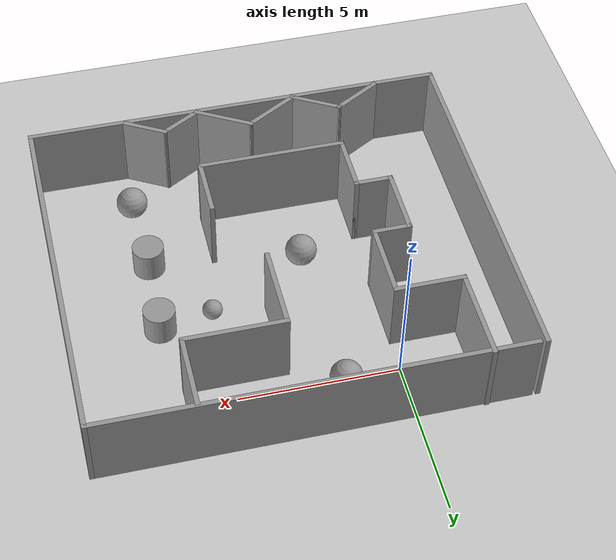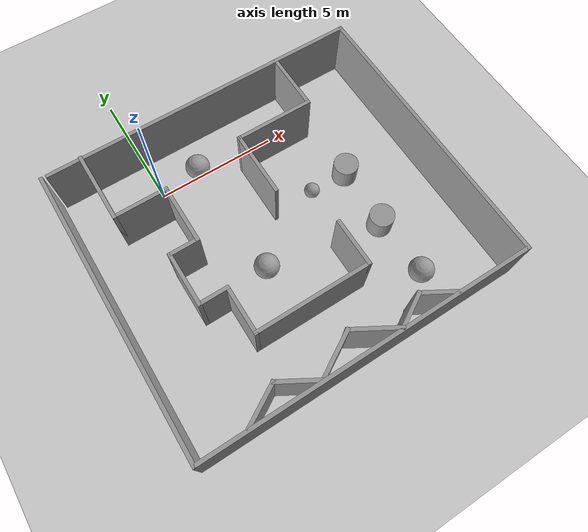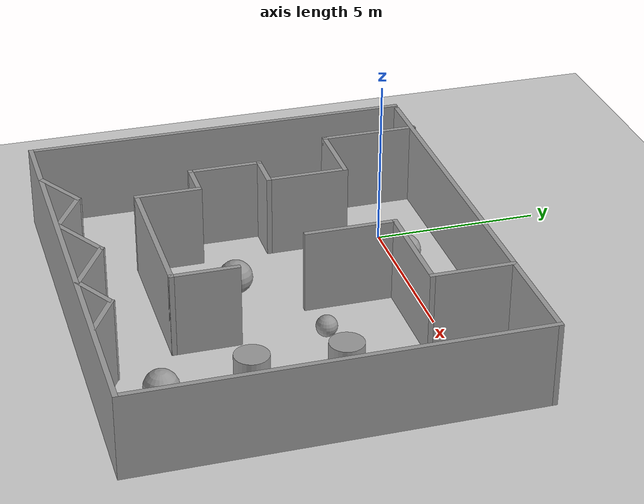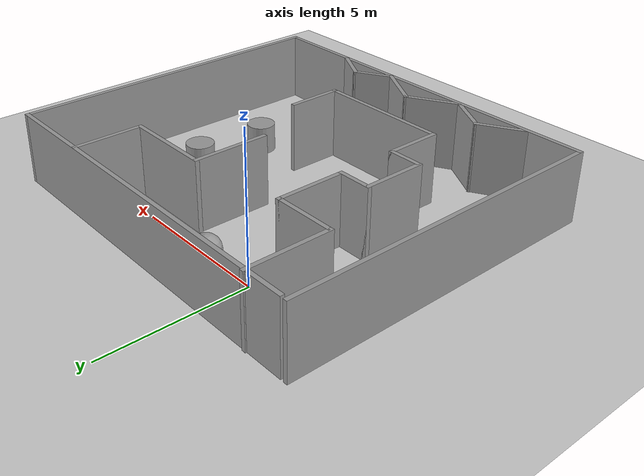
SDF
<sdf version="1.7">
 <world name="default">
  <light name="sun" type="directional">
   <pose>0 0 10 0 -0 0</pose>
   <diffuse>0.8 0.8 0.8 1</diffuse>
   <specular>0.2 0.2 0.2 1</specular>
   <attenuation>
    <range>1000</range>
    <constant>0.9</constant>
    <linear>0.01</linear>
    <quadratic>0.001</quadratic>
   </attenuation>
   <direction>-0.5 0.1 -0.9</direction>
   <spot><inner_angle>0</inner_angle><outer_angle>0</outer_angle><falloff>0</falloff></spot>
  </light>
  <model name="ground_plane">
   <static>1</static>
   <link name="link">
    <collision name="collision">
     <geometry><plane><normal>0 0 1</normal><size>100 100</size></plane></geometry>
     <surface><friction><ode><mu>100</mu><mu2>50</mu2></ode></friction></surface>
    </collision>
    <visual name="visual">
     <cast_shadows>0</cast_shadows>
     <geometry><plane><normal>0 0 1</normal><size>100 100</size></plane></geometry>
     <material>
      <script><uri>file://media/materials/scripts/gazebo.material</uri><name>Gazebo/Grey</name></script>
     </material>
    </visual>
   </link>
  </model>
  <gravity>0 0 -9.8</gravity>
  <magnetic_field>6e-06 2.3e-05 -4.2e-05</magnetic_field>
  <atmosphere type="adiabatic"/>
  <physics type="ode">
   <max_step_size>0.001</max_step_size>
   <real_time_factor>1</real_time_factor>
   <real_time_update_rate>1000</real_time_update_rate>
  </physics>
  <scene><ambient>0.4 0.4 0.4 1</ambient><background>0.7 0.7 0.7 1</background><shadows>1</shadows></scene>
  <spherical_coordinates>
   <surface_model>EARTH_WGS84</surface_model>
   <latitude_deg>0</latitude_deg>
   <longitude_deg>0</longitude_deg>
   <elevation>0</elevation>
   <heading_deg>0</heading_deg>
  </spherical_coordinates>
  <model name="walls">
   <pose>2.94182 -4.0688 0 0 -0 0</pose>
   <link name="Wall_11">
    <collision name="Wall_11_Collision">
     <geometry><box><size>3 0.15 2.5</size></box></geometry>
     <pose>0 0 1.25 0 -0 0</pose>
    </collision>
    <visual name="Wall_11_Visual">
     <pose>0 0 1.25 0 -0 0</pose>
     <geometry><box><size>3 0.15 2.5</size></box></geometry>
     <material>
      <script><uri>file://media/materials/scripts/gazebo.material</uri><name>Gazebo/Grey</name></script>
      <ambient>1 1 1 1</ambient>
     </material>
     <meta><layer>0</layer></meta>
    </visual>
    <pose>-5.07342 4.39742 0 0 -0 -1.5708</pose>
   </link>
   <link name="Wall_12">
    <collision name="Wall_12_Collision">
     <geometry><box><size>2.25 0.15 2.5</size></box></geometry>
     <pose>0 0 1.25 0 -0 0</pose>
    </collision>
    <visual name="Wall_12_Visual">
     <pose>0 0 1.25 0 -0 0</pose>
     <geometry><box><size>2.25 0.15 2.5</size></box></geometry>
     <material>
      <script><uri>file://media/materials/scripts/gazebo.material</uri><name>Gazebo/Grey</name></script>
      <ambient>1 1 1 1</ambient>
     </material>
     <meta><layer>0</layer></meta>
    </visual>
    <pose>-4.02342 2.97242 0 0 -0 0</pose>
   </link>
   <link name="Wall_13">
    <collision name="Wall_13_Collision">
     <geometry><box><size>2.5 0.15 2.5</size></box></geometry>
     <pose>0 0 1.25 0 -0 0</pose>
    </collision>
    <visual name="Wall_13_Visual">
     <pose>0 0 1.25 0 -0 0</pose>
     <geometry><box><size>2.5 0.15 2.5</size></box></geometry>
     <material>
      <script><uri>file://media/materials/scripts/gazebo.material</uri><name>Gazebo/Grey</name></script>
      <ambient>1 1 1 1</ambient>
     </material>
     <meta><layer>0</layer></meta>
    </visual>
    <pose>-2.97342 1.79742 0 0 -0 -1.5708</pose>
   </link>
   <link name="Wall_14">
    <collision name="Wall_14_Collision">
     <geometry><box><size>1.25 0.15 2.5</size></box></geometry>
     <pose>0 0 1.25 0 -0 0</pose>
    </collision>
    <visual name="Wall_14_Visual">
     <pose>0 0 1.25 0 -0 0</pose>
     <geometry><box><size>1.25 0.15 2.5</size></box></geometry>
     <material>
      <script><uri>file://media/materials/scripts/gazebo.material</uri><name>Gazebo/Grey</name></script>
      <ambient>1 1 1 1</ambient>
     </material>
     <meta><layer>0</layer></meta>
    </visual>
    <pose>-3.52342 0.622418 0 0 -0 3.14159</pose>
   </link>
   <link name="Wall_15">
    <collision name="Wall_15_Collision">
     <geometry><box><size>2.25 0.15 2.5</size></box></geometry>
     <pose>0 0 1.25 0 -0 0</pose>
    </collision>
    <visual name="Wall_15_Visual">
     <pose>0 0 1.25 0 -0 0</pose>
     <geometry><box><size>2.25 0.15 2.5</size></box></geometry>
     <material>
      <script><uri>file://media/materials/scripts/gazebo.material</uri><name>Gazebo/Grey</name></script>
      <ambient>1 1 1 1</ambient>
     </material>
     <meta><layer>0</layer></meta>
    </visual>
    <pose>-4.07342 -0.427582 0 0 -0 -1.5708</pose>
   </link>
   <link name="Wall_16">
    <collision name="Wall_16_Collision">
     <geometry><box><size>1.25 0.15 2.5</size></box></geometry>
     <pose>0 0 1.25 0 -0 0</pose>
    </collision>
    <visual name="Wall_16_Visual">
     <pose>0 0 1.25 0 -0 0</pose>
     <geometry><box><size>1.25 0.15 2.5</size></box></geometry>
     <material>
      <script><uri>file://media/materials/scripts/gazebo.material</uri><name>Gazebo/Grey</name></script>
      <ambient>1 1 1 1</ambient>
     </material>
     <meta><layer>0</layer></meta>
    </visual>
    <pose>-3.52342 -1.47758 0 0 -0 0</pose>
   </link>
   <link name="Wall_17">
    <collision name="Wall_17_Collision">
     <geometry><box><size>2 0.15 2.5</size></box></geometry>
     <pose>0 0 1.25 0 -0 0</pose>
    </collision>
    <visual name="Wall_17_Visual">
     <pose>0 0 1.25 0 -0 0</pose>
     <geometry><box><size>2 0.15 2.5</size></box></geometry>
     <material>
      <script><uri>file://media/materials/scripts/gazebo.material</uri><name>Gazebo/Grey</name></script>
      <ambient>1 1 1 1</ambient>
     </material>
     <meta><layer>0</layer></meta>
    </visual>
    <pose>-2.97342 -2.40258 0 0 -0 -1.5708</pose>
   </link>
   <link name="Wall_18">
    <collision name="Wall_18_Collision">
     <geometry><box><size>4.75 0.15 2.5</size></box></geometry>
     <pose>0 0 1.25 0 -0 0</pose>
    </collision>
    <visual name="Wall_18_Visual">
     <pose>0 0 1.25 0 -0 0</pose>
     <geometry><box><size>4.75 0.15 2.5</size></box></geometry>
     <material>
      <script><uri>file://media/materials/scripts/gazebo.material</uri><name>Gazebo/Grey</name></script>
      <ambient>1 1 1 1</ambient>
     </material>
     <meta><layer>0</layer></meta>
    </visual>
    <pose>-0.673416 -3.32758 0 0 -0 0</pose>
   </link>
   <link name="Wall_19">
    <collision name="Wall_19_Collision">
     <geometry><box><size>2 0.15 2.5</size></box></geometry>
     <pose>0 0 1.25 0 -0 0</pose>
    </collision>
    <visual name="Wall_19_Visual">
     <pose>0 0 1.25 0 -0 0</pose>
     <geometry><box><size>2 0.15 2.5</size></box></geometry>
     <material>
      <script><uri>file://media/materials/scripts/gazebo.material</uri><name>Gazebo/Grey</name></script>
      <ambient>1 1 1 1</ambient>
     </material>
     <meta><layer>0</layer></meta>
    </visual>
    <pose>1.62658 -2.40258 0 0 -0 1.5708</pose>
   </link>
   <link name="Wall_23">
    <collision name="Wall_23_Collision">
     <geometry><box><size>2.5 0.15 2.5</size></box></geometry>
     <pose>0 0 1.25 0 -0 0</pose>
    </collision>
    <visual name="Wall_23_Visual">
     <pose>0 0 1.25 0 -0 0</pose>
     <geometry><box><size>2.5 0.15 2.5</size></box></geometry>
     <material>
      <script><uri>file://media/materials/scripts/gazebo.material</uri><name>Gazebo/Grey</name></script>
      <ambient>1 1 1 1</ambient>
     </material>
     <meta><layer>0</layer></meta>
    </visual>
    <pose>3.50717 4.58824 0 0 -0 -1.5708</pose>
   </link>
   <link name="Wall_24">
    <collision name="Wall_24_Collision">
     <geometry><box><size>3.25 0.15 2.5</size></box></geometry>
     <pose>0 0 1.25 0 -0 0</pose>
    </collision>
    <visual name="Wall_24_Visual">
     <pose>0 0 1.25 0 -0 0</pose>
     <geometry><box><size>3.25 0.15 2.5</size></box></geometry>
     <material>
      <script><uri>file://media/materials/scripts/gazebo.material</uri><name>Gazebo/Grey</name></script>
      <ambient>1 1 1 1</ambient>
     </material>
     <meta><layer>0</layer></meta>
    </visual>
    <pose>1.95717 3.41324 0 0 -0 3.14159</pose>
   </link>
   <link name="Wall_25">
    <collision name="Wall_25_Collision">
     <geometry><box><size>2.75 0.15 2.5</size></box></geometry>
     <pose>0 0 1.25 0 -0 0</pose>
    </collision>
    <visual name="Wall_25_Visual">
     <pose>0 0 1.25 0 -0 0</pose>
     <geometry><box><size>2.75 0.15 2.5</size></box></geometry>
     <material>
      <script><uri>file://media/materials/scripts/gazebo.material</uri><name>Gazebo/Grey</name></script>
      <ambient>1 1 1 1</ambient>
     </material>
     <meta><layer>0</layer></meta>
    </visual>
    <pose>0.40717 2.11324 0 0 -0 -1.5708</pose>
   </link>
   <link name="Wall_29">
    <collision name="Wall_29_Collision">
     <geometry><box><size>1.75 0.15 2.5</size></box></geometry>
     <pose>0 0 1.25 0 -0 0</pose>
    </collision>
    <visual name="Wall_29_Visual">
     <pose>0 0 1.25 0 -0 0</pose>
     <geometry><box><size>1.75 0.15 2.5</size></box></geometry>
     <material>
      <script><uri>file://media/materials/scripts/gazebo.material</uri><name>Gazebo/Grey</name></script>
      <ambient>1 1 1 1</ambient>
     </material>
     <meta><layer>0</layer></meta>
    </visual>
    <pose>-4.02554 -5.37617 0 0 -0 0.523599</pose>
   </link>
   <link name="Wall_30">
    <collision name="Wall_30_Collision">
     <geometry><box><size>1.75 0.15 2.5</size></box></geometry>
     <pose>0 0 1.25 0 -0 0</pose>
    </collision>
    <visual name="Wall_30_Visual">
     <pose>0 0 1.25 0 -0 0</pose>
     <geometry><box><size>1.75 0.15 2.5</size></box></geometry>
     <material>
      <script><uri>file://media/materials/scripts/gazebo.material</uri><name>Gazebo/Grey</name></script>
      <ambient>1 1 1 1</ambient>
     </material>
     <meta><layer>0</layer></meta>
    </visual>
    <pose>-2.6399 -5.37617 0 0 -0 -0.523599</pose>
   </link>
   <link name="Wall_31">
    <collision name="Wall_31_Collision">
     <geometry><box><size>2 0.15 2.5</size></box></geometry>
     <pose>0 0 1.25 0 -0 0</pose>
    </collision>
    <visual name="Wall_31_Visual">
     <pose>0 0 1.25 0 -0 0</pose>
     <geometry><box><size>2 0.15 2.5</size></box></geometry>
     <material>
      <script><uri>file://media/materials/scripts/gazebo.material</uri><name>Gazebo/Grey</name></script>
      <ambient>1 1 1 1</ambient>
     </material>
     <meta><layer>0</layer></meta>
    </visual>
    <pose>-1.146 -5.31367 0 0 -0 0.523599</pose>
   </link>
   <link name="Wall_32">
    <collision name="Wall_32_Collision">
     <geometry><box><size>2 0.15 2.5</size></box></geometry>
     <pose>0 0 1.25 0 -0 0</pose>
    </collision>
    <visual name="Wall_32_Visual">
     <pose>0 0 1.25 0 -0 0</pose>
     <geometry><box><size>2 0.15 2.5</size></box></geometry>
     <material>
      <script><uri>file://media/materials/scripts/gazebo.material</uri><name>Gazebo/Grey</name></script>
      <ambient>1 1 1 1</ambient>
     </material>
     <meta><layer>0</layer></meta>
    </visual>
    <pose>0.456144 -5.31367 0 0 -0 -0.523599</pose>
   </link>
   <link name="Wall_33">
    <collision name="Wall_33_Collision">
     <geometry><box><size>1.5 0.15 2.5</size></box></geometry>
     <pose>0 0 1.25 0 -0 0</pose>
    </collision>
    <visual name="Wall_33_Visual">
     <pose>0 0 1.25 0 -0 0</pose>
     <geometry><box><size>1.5 0.15 2.5</size></box></geometry>
     <material>
      <script><uri>file://media/materials/scripts/gazebo.material</uri><name>Gazebo/Grey</name></script>
      <ambient>1 1 1 1</ambient>
     </material>
     <meta><layer>0</layer></meta>
    </visual>
    <pose>1.84179 -5.43867 0 0 -0 0.523599</pose>
   </link>
   <link name="Wall_34">
    <collision name="Wall_34_Collision">
     <geometry><box><size>1.5 0.15 2.5</size></box></geometry>
     <pose>0 0 1.25 0 -0 0</pose>
    </collision>
    <visual name="Wall_34_Visual">
     <pose>0 0 1.25 0 -0 0</pose>
     <geometry><box><size>1.5 0.15 2.5</size></box></geometry>
     <material>
      <script><uri>file://media/materials/scripts/gazebo.material</uri><name>Gazebo/Grey</name></script>
      <ambient>1 1 1 1</ambient>
     </material>
     <meta><layer>0</layer></meta>
    </visual>
    <pose>3.01092 -5.43867 0 0 -0 -0.523599</pose>
   </link>
   <link name="Wall_6">
    <collision name="Wall_6_Collision">
     <geometry><box><size>11.75 0.15 2.5</size></box></geometry>
     <pose>0 0 1.25 0 -0 0</pose>
    </collision>
    <visual name="Wall_6_Visual">
     <pose>0 0 1.25 0 -0 0</pose>
     <geometry><box><size>11.75 0.15 2.5</size></box></geometry>
     <material>
      <script><uri>file://media/materials/scripts/gazebo.material</uri><name>Gazebo/Grey</name></script>
      <ambient>1 1 1 1</ambient>
     </material>
     <meta><layer>0</layer></meta>
    </visual>
    <pose>-6.675 -0.022417 0 0 -0 -1.5708</pose>
   </link>
   <link name="Wall_7">
    <collision name="Wall_7_Collision">
     <geometry><box><size>13.5 0.15 2.5</size></box></geometry>
     <pose>0 0 1.25 0 -0 0</pose>
    </collision>
    <visual name="Wall_7_Visual">
     <pose>0 0 1.25 0 -0 0</pose>
     <geometry><box><size>13.5 0.15 2.5</size></box></geometry>
     <material>
      <script><uri>file://media/materials/scripts/gazebo.material</uri><name>Gazebo/Grey</name></script>
      <ambient>1 1 1 1</ambient>
     </material>
     <meta><layer>0</layer></meta>
    </visual>
    <pose>0 -5.82242 0 0 -0 0</pose>
   </link>
   <link name="Wall_8">
    <collision name="Wall_8_Collision">
     <geometry><box><size>11.75 0.15 2.5</size></box></geometry>
     <pose>0 0 1.25 0 -0 0</pose>
    </collision>
    <visual name="Wall_8_Visual">
     <pose>0 0 1.25 0 -0 0</pose>
     <geometry><box><size>11.75 0.15 2.5</size></box></geometry>
     <material>
      <script><uri>file://media/materials/scripts/gazebo.material</uri><name>Gazebo/Grey</name></script>
      <ambient>1 1 1 1</ambient>
     </material>
     <meta><layer>0</layer></meta>
    </visual>
    <pose>6.675 -0.022417 0 0 -0 1.5708</pose>
   </link>
   <link name="Wall_9">
    <collision name="Wall_9_Collision">
     <geometry><box><size>13.25 0.15 2.5</size></box></geometry>
     <pose>0 0 1.25 0 -0 0</pose>
    </collision>
    <visual name="Wall_9_Visual">
     <pose>0 0 1.25 0 -0 0</pose>
     <geometry><box><size>13.25 0.15 2.5</size></box></geometry>
     <material>
      <script><uri>file://media/materials/scripts/gazebo.material</uri><name>Gazebo/Grey</name></script>
      <ambient>1 1 1 1</ambient>
     </material>
     <meta><layer>0</layer></meta>
    </visual>
    <pose>0.125 5.77758 0 0 -0 3.14159</pose>
   </link>
   <static>1</static>
  </model>
  <model name="unit_cylinder">
   <pose>6.63547 -5.71796 0.499993 -3e-06 -3e-06 0</pose>
   <link name="link">
    <inertial>
     <mass>1</mass>
     <inertia><ixx>0.145833</ixx><ixy>0</ixy><ixz>0</ixz><iyy>0.145833</iyy><iyz>0</iyz><izz>0.125</izz></inertia>
    </inertial>
    <collision name="collision">
     <geometry><cylinder><radius>0.5</radius><length>1</length></cylinder></geometry>
    </collision>
    <visual name="visual">
     <geometry><cylinder><radius>0.5</radius><length>1</length></cylinder></geometry>
     <material>
      <script><name>Gazebo/Grey</name><uri>file://media/materials/scripts/gazebo.material</uri></script>
     </material>
    </visual>
   </link>
  </model>
  <model name="unit_cylinder_0">
   <pose>6.75288 -3.11268 0.499997 3e-06 4e-06 -0</pose>
   <link name="link">
    <inertial>
     <mass>1</mass>
     <inertia><ixx>0.145833</ixx><ixy>0</ixy><ixz>0</ixz><iyy>0.145833</iyy><iyz>0</iyz><izz>0.125</izz></inertia>
    </inertial>
    <collision name="collision">
     <geometry><cylinder><radius>0.5</radius><length>1</length></cylinder></geometry>
    </collision>
    <visual name="visual">
     <geometry><cylinder><radius>0.5</radius><length>1</length></cylinder></geometry>
     <material>
      <script><name>Gazebo/Grey</name><uri>file://media/materials/scripts/gazebo.material</uri></script>
     </material>
    </visual>
   </link>
  </model>
  <model name="unit_sphere_0">
   <pose>6.74325 -8.19926 0.5 0 -0 0</pose>
   <link name="link">
    <inertial>
     <mass>1</mass>
     <inertia><ixx>0.1</ixx><ixy>0</ixy><ixz>0</ixz><iyy>0.1</iyy><iyz>0</iyz><izz>0.1</izz></inertia>
    </inertial>
    <collision name="collision"><geometry><sphere><radius>0.5</radius></sphere></geometry></collision>
    <visual name="visual">
     <geometry><sphere><radius>0.5</radius></sphere></geometry>
     <material>
      <script><name>Gazebo/Grey</name><uri>file://media/materials/scripts/gazebo.material</uri></script>
     </material>
    </visual>
   </link>
  </model>
  <model name="unit_sphere">
   <link name="link">
    <inertial>
     <mass>0.23881</mass>
     <inertia>
      <ixx>0.00919122</ixx>
      <ixy>0</ixy>
      <ixz>0</ixz>
      <iyy>0.00919122</iyy>
      <iyz>0</iyz>
      <izz>0.00919122</izz>
     </inertia>
    </inertial>
    <pose>0.652234 0.668811 0 0 -0 0</pose>
    <visual name="visual">
     <geometry><sphere><radius>0.310192</radius></sphere></geometry>
     <material>
      <script><name>Gazebo/Grey</name><uri>file://media/materials/scripts/gazebo.material</uri></script>
      <shader type="pixel"/>
     </material>
    </visual>
    <collision name="collision">
     <geometry><sphere><radius>0.310192</radius></sphere></geometry>
     <surface>
      <friction>
       <ode><mu>1</mu><mu2>1</mu2><fdir1>0 0 0</fdir1><slip1>0</slip1><slip2>0</slip2></ode>
       <torsional>
        <coefficient>1</coefficient>
        <patch_radius>0</patch_radius>
        <surface_radius>0</surface_radius>
        <use_patch_radius>1</use_patch_radius>
        <ode><slip>0</slip></ode>
       </torsional>
      </friction>
      <bounce><restitution_coefficient>0</restitution_coefficient><threshold>1e+06</threshold></bounce>
      <contact>
       <collide_without_contact>0</collide_without_contact>
       <collide_without_contact_bitmask>1</collide_without_contact_bitmask>
       <collide_bitmask>1</collide_bitmask>
       <ode>
        <soft_cfm>0</soft_cfm>
        <soft_erp>0.2</soft_erp>
        <kp>1e+13</kp>
        <kd>1</kd>
        <max_vel>0.01</max_vel>
        <min_depth>0</min_depth>
       </ode>
       <bullet>
        <split_impulse>1</split_impulse>
        <split_impulse_penetration_threshold>-0.01</split_impulse_penetration_threshold>
        <soft_cfm>0</soft_cfm>
        <soft_erp>0.2</soft_erp>
        <kp>1e+13</kp>
        <kd>1</kd>
       </bullet>
      </contact>
     </surface>
    </collision>
   </link>
   <link name="link_0">
    <inertial>
     <mass>1</mass>
     <inertia><ixx>0.1</ixx><ixy>0</ixy><ixz>0</ixz><iyy>0.1</iyy><iyz>0</iyz><izz>0.1</izz></inertia>
    </inertial>
    <pose>-2.57492 -1.10864 0 0 -0 0</pose>
    <visual name="visual">
     <geometry><sphere><radius>0.5</radius></sphere></geometry>
     <material>
      <lighting>1</lighting>
      <script><uri>file://media/materials/scripts/gazebo.material</uri><name>Gazebo/Grey</name></script>
      <shader type="pixel"/>
     </material>
    </visual>
    <collision name="collision">
     <geometry><sphere><radius>0.5</radius></sphere></geometry>
     <surface>
      <friction>
       <ode><mu>1</mu><mu2>1</mu2><fdir1>0 0 0</fdir1><slip1>0</slip1><slip2>0</slip2></ode>
       <torsional>
        <coefficient>1</coefficient>
        <patch_radius>0</patch_radius>
        <surface_radius>0</surface_radius>
        <use_patch_radius>1</use_patch_radius>
        <ode><slip>0</slip></ode>
       </torsional>
      </friction>
      <bounce><restitution_coefficient>0</restitution_coefficient><threshold>1e+06</threshold></bounce>
      <contact>
       <collide_without_contact>0</collide_without_contact>
       <collide_without_contact_bitmask>1</collide_without_contact_bitmask>
       <collide_bitmask>1</collide_bitmask>
       <ode>
        <soft_cfm>0</soft_cfm>
        <soft_erp>0.2</soft_erp>
        <kp>1e+13</kp>
        <kd>1</kd>
        <max_vel>0.01</max_vel>
        <min_depth>0</min_depth>
       </ode>
       <bullet>
        <split_impulse>1</split_impulse>
        <split_impulse_penetration_threshold>-0.01</split_impulse_penetration_threshold>
        <soft_cfm>0</soft_cfm>
        <soft_erp>0.2</soft_erp>
        <kp>1e+13</kp>
        <kd>1</kd>
       </bullet>
      </contact>
     </surface>
    </collision>
   </link>
   <link name="link_2">
    <inertial>
     <mass>1</mass>
     <inertia><ixx>0.1</ixx><ixy>0</ixy><ixz>0</ixz><iyy>0.1</iyy><iyz>0</iyz><izz>0.1</izz></inertia>
    </inertial>
    <pose>-2.69846 4.06515 0 0 -0 0</pose>
    <visual name="visual">
     <geometry><sphere><radius>0.5</radius></sphere></geometry>
     <material>
      <lighting>1</lighting>
      <script><uri>file://media/materials/scripts/gazebo.material</uri><name>Gazebo/Grey</name></script>
      <shader type="pixel"/>
     </material>
    </visual>
    <collision name="collision">
     <geometry><sphere><radius>0.5</radius></sphere></geometry>
     <surface>
      <friction>
       <ode><mu>1</mu><mu2>1</mu2><fdir1>0 0 0</fdir1><slip1>0</slip1><slip2>0</slip2></ode>
       <torsional>
        <coefficient>1</coefficient>
        <patch_radius>0</patch_radius>
        <surface_radius>0</surface_radius>
        <use_patch_radius>1</use_patch_radius>
        <ode><slip>0</slip></ode>
       </torsional>
      </friction>
      <bounce><restitution_coefficient>0</restitution_coefficient><threshold>1e+06</threshold></bounce>
      <contact>
       <collide_without_contact>0</collide_without_contact>
       <collide_without_contact_bitmask>1</collide_without_contact_bitmask>
       <collide_bitmask>1</collide_bitmask>
       <ode>
        <soft_cfm>0</soft_cfm>
        <soft_erp>0.2</soft_erp>
        <kp>1e+13</kp>
        <kd>1</kd>
        <max_vel>0.01</max_vel>
        <min_depth>0</min_depth>
       </ode>
       <bullet>
        <split_impulse>1</split_impulse>
        <split_impulse_penetration_threshold>-0.01</split_impulse_penetration_threshold>
        <soft_cfm>0</soft_cfm>
        <soft_erp>0.2</soft_erp>
        <kp>1e+13</kp>
        <kd>1</kd>
       </bullet>
      </contact>
     </surface>
    </collision>
   </link>
   <static>0</static>
   <pose>4.4428 -3.84676 0.5 0 -0 0</pose>
  </model>
 </world>
</sdf>
